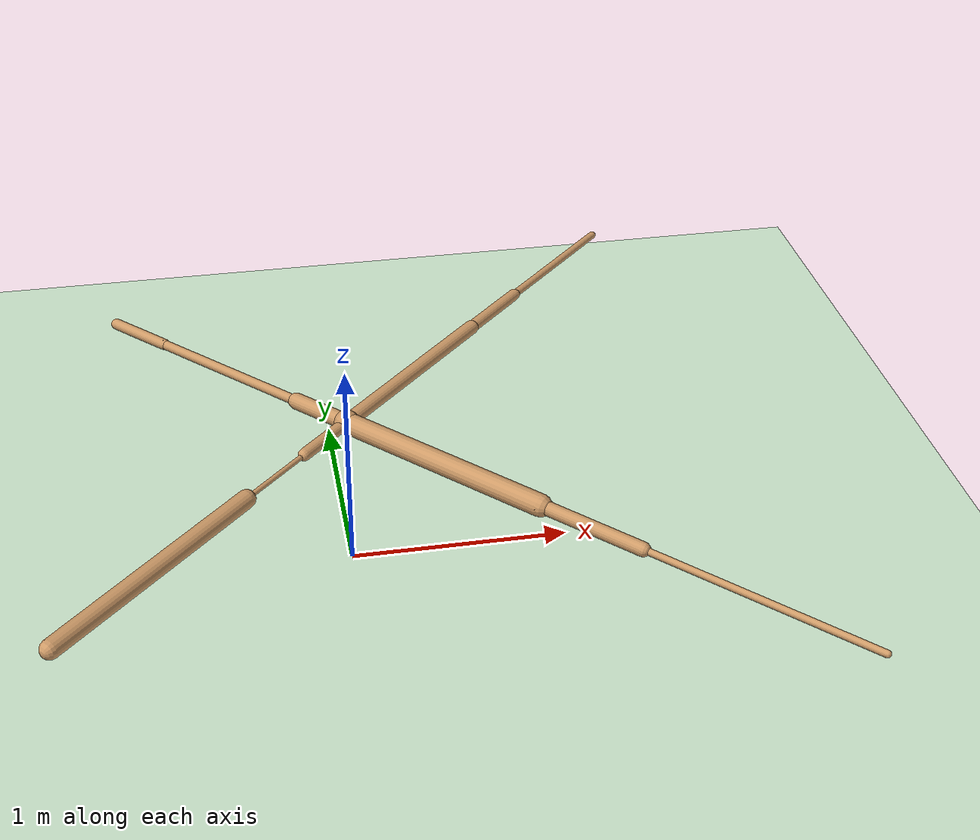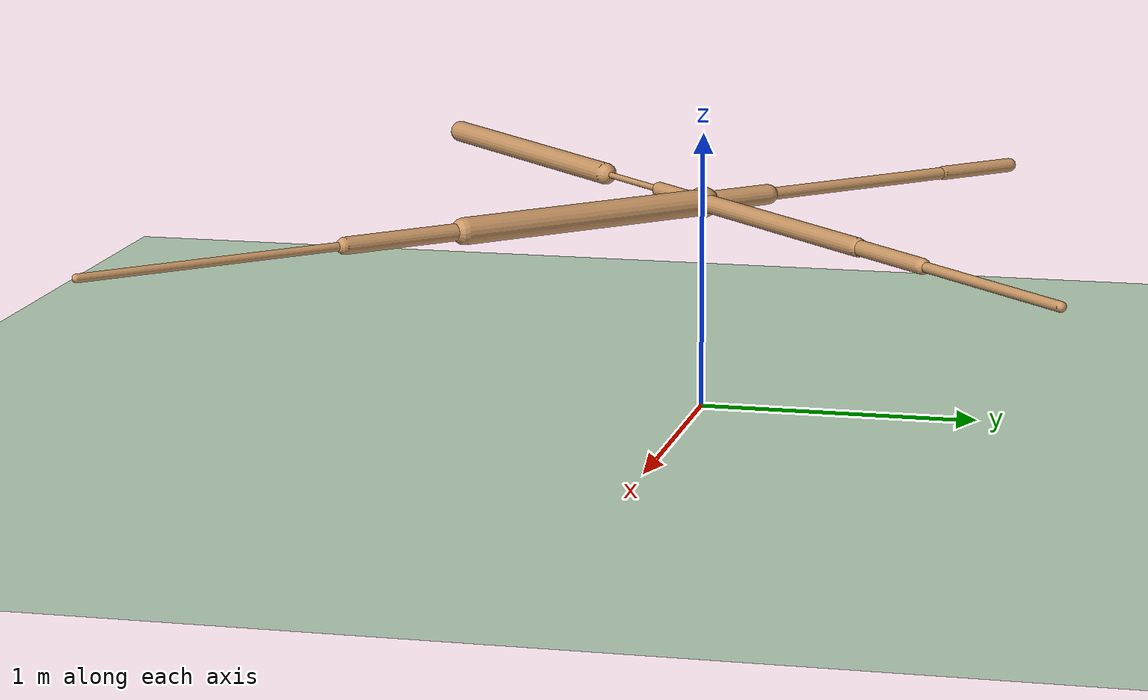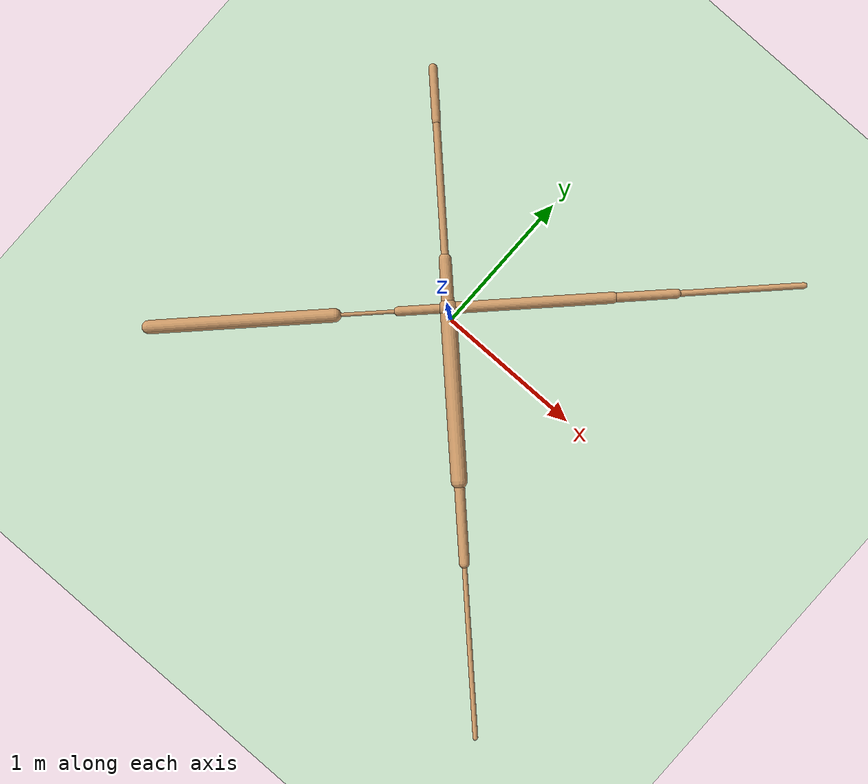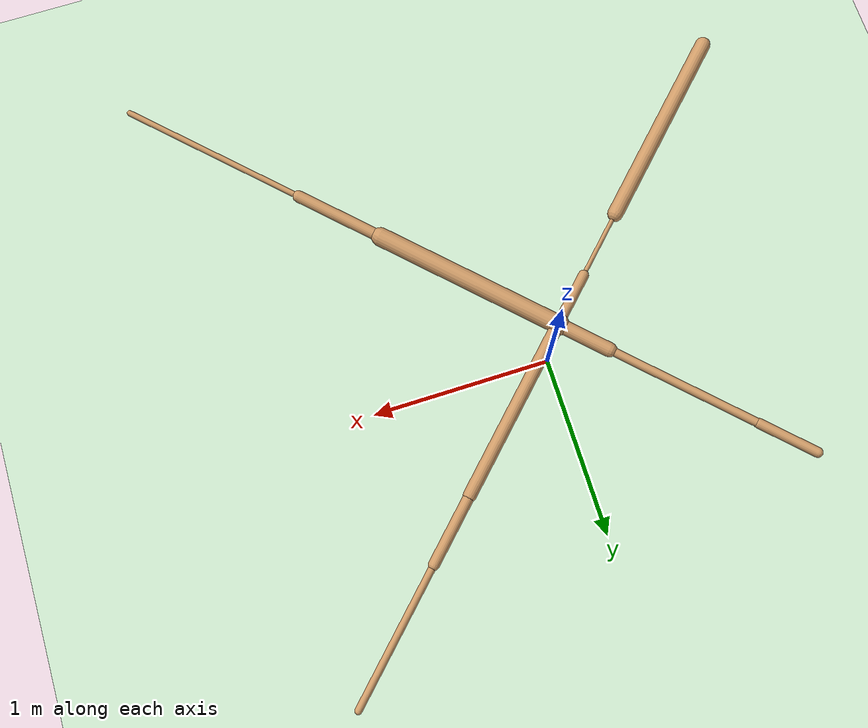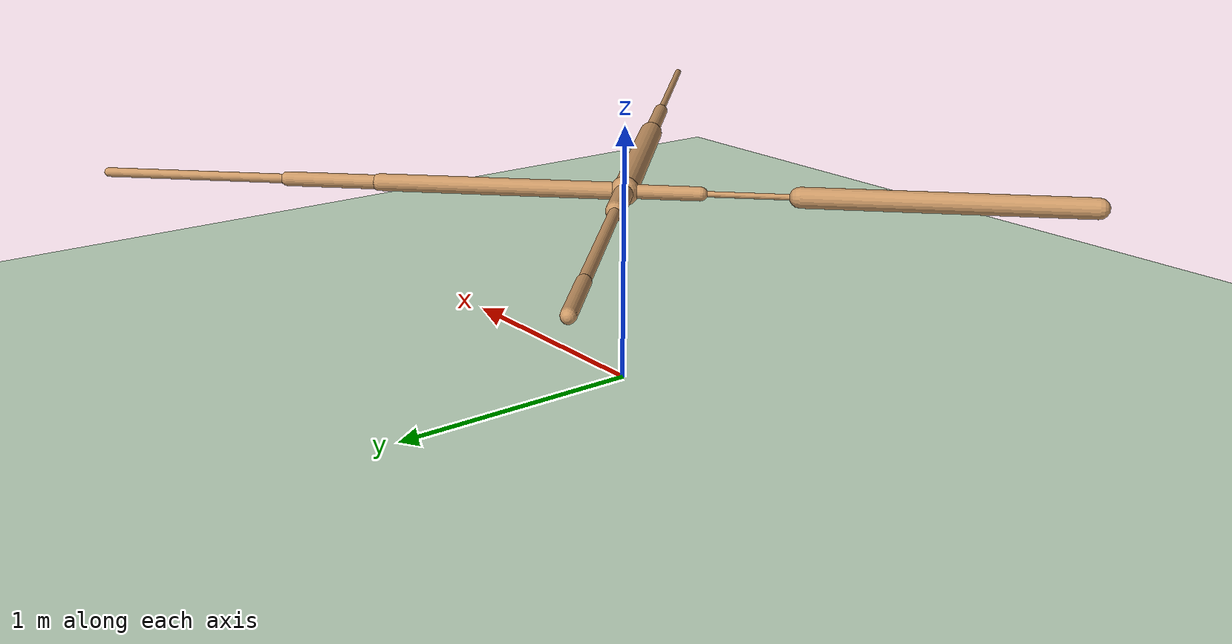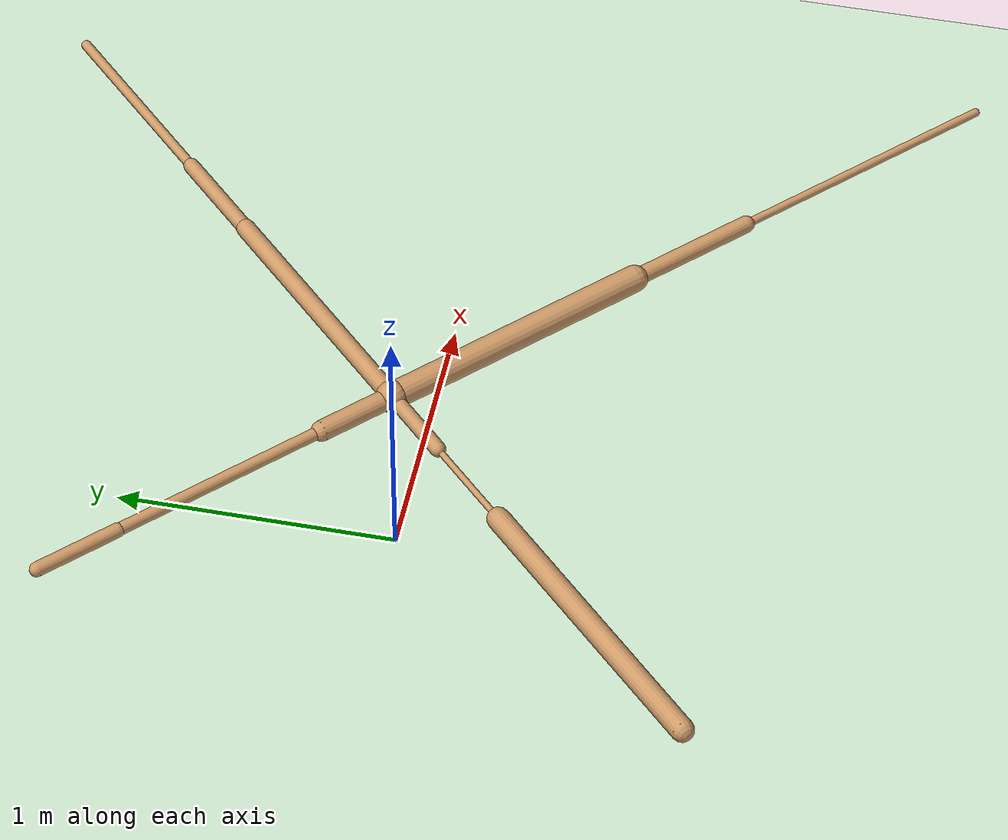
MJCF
<mujoco model="ant">
  <compiler angle="degree" coordinate="local" inertiafromgeom="true" />
  <option integrator="RK4" timestep="0.01" />
  <custom>
    <numeric data="0.0 0.0 0.55 1.0 0.0 0.0 0.0 0.0 1.0 0.0 -1.0 0.0 -1.0 0.0 1.0" name="init_qpos" />
  </custom>
  <default>
    <joint armature="1" damping="1" limited="true" />
    <geom conaffinity="0" condim="3" density="5.0" friction="1 0.5 0.5" margin="0.01" rgba="0.8 0.6 0.4 1" />
  </default>
  <asset>
    <texture builtin="gradient" height="100" rgb1="1 1 1" rgb2="0 0 0" type="skybox" width="100" />
    <texture builtin="flat" height="1278" mark="cross" markrgb="1 1 1" name="texgeom" random="0.01" rgb1="0.8 0.6 0.4" rgb2="0.8 0.6 0.4" type="cube" width="127" />
    <texture builtin="checker" height="100" name="texplane" rgb1="0 0 0" rgb2="0.8 0.8 0.8" type="2d" width="100" />
    <material name="MatPlane" reflectance="0.5" shininess="1" specular="1" texrepeat="60 60" texture="texplane" />
    <material name="geom" texture="texgeom" texuniform="true" />
  </asset>
  <worldbody>
    <light cutoff="100" diffuse="1 1 1" dir="-0 0 -1.3" directional="true" exponent="1" pos="0 0 1.3" specular=".1 .1 .1" />
    <geom conaffinity="1" condim="3" material="MatPlane" name="floor" pos="0 0 0" rgba="0.8 0.9 0.8 1" size="40 40 40" type="plane" />
    <body name="torso" pos="0 0 0.75">
      <camera name="track" mode="trackcom" pos="0 -11 5" xyaxes="1 0 0 0 0.5 1" />
      <geom name="torso_geom" pos="0 0 0" size="0.05603870749473572" type="sphere" />
      <joint armature="0" damping="0" limited="false" margin="0.01" name="root" pos="0 0 0" type="free" />
      <body name="front_left_leg" pos="0 0 0">
        <geom fromto="0 0 0 0.6686564087867737 0.6686564087867737 0" name="aux_1_geom" size="0.03316120058298111" type="capsule" />
        <body name="aux_1" pos="0.6686564087867737 0.6686564087867737 0">
          <joint axis="0 0 1" name="hip_1" pos="0.0 0.0 0.0" range="-30 30" type="hinge" />
          <geom fromto="0 0 0 0.2579320967197418 0.2579320967197418 0" name="left_leg_geom" size="0.027724383398890495" type="capsule" />
          <body name="left_leg_geom_aux" pos="0.2579320967197418 0.2579320967197418 0">
            <joint axis="-1 1 0" name="ankle_1" pos="0.0 0.0 0.0" range="30 70" type="hinge" />
            <geom fromto="0 0 0 0.516933262348175 0.516933262348175 0" name="left_ankle_geom" size="0.01806151121854782" type="capsule" />
          </body>
        </body>
      </body>
      <body name="front_right_leg" pos="0 0 0">
        <geom fromto="0 0 0 -0.19810429215431213 0.19810429215431213 0" name="aux_2_geom" size="0.03660976514220238" type="capsule" />
        <body name="aux_2" pos="-0.19810429215431213 0.19810429215431213 0">
          <joint axis="0 0 1" name="hip_2" pos="0.0 0.0 0.0" range="-30 30" type="hinge" />
          <geom fromto="0 0 0 -0.5611169338226318 0.5611169338226318 0" name="right_leg_geom" size="0.02183634042739868" type="capsule" />
          <body name="right_leg_geom_aux" pos="-0.5611169338226318 0.5611169338226318 0">
            <joint axis="1 1 0" name="ankle_2" pos="0.0 0.0 0.0" range="-70 -30" type="hinge" />
            <geom fromto="0 0 0 -0.21660208702087402 0.21660208702087402 0" name="right_ankle_geom" size="0.025349149480462074" type="capsule" />
          </body>
        </body>
      </body>
      <body name="back_leg" pos="0 0 0">
        <geom fromto="0 0 0 -0.20163707435131073 -0.20163707435131073 0" name="aux_3_geom" size="0.027066074311733246" type="capsule" />
        <body name="aux_3" pos="-0.20163707435131073 -0.20163707435131073 0">
          <joint axis="0 0 1" name="hip_3" pos="0.0 0.0 0.0" range="-30 30" type="hinge" />
          <geom fromto="0 0 0 -0.25906944274902344 -0.25906944274902344 0" name="back_leg_geom" size="0.01110976655036211" type="capsule" />
          <body name="back_leg_geom_aux" pos="-0.25906944274902344 -0.25906944274902344 0">
            <joint axis="-1 1 0" name="ankle_3" pos="0.0 0.0 0.0" range="-70 -30" type="hinge" />
            <geom fromto="0 0 0 -0.7521599531173706 -0.7521599531173706 0" name="third_ankle_geom" size="0.03983617573976517" type="capsule" />
          </body>
        </body>
      </body>
      <body name="right_back_leg" pos="0 0 0">
        <geom fromto="0 0 0 0.7004987001419067 -0.7004987001419067 0" name="aux_4_geom" size="0.04783311113715172" type="capsule" />
        <body name="aux_4" pos="0.7004987001419067 -0.7004987001419067 0">
          <joint axis="0 0 1" name="hip_4" pos="0.0 0.0 0.0" range="-30 30" type="hinge" />
          <geom fromto="0 0 0 0.33292829990386963 -0.33292829990386963 0" name="rightback_leg_geom" size="0.030317669734358788" type="capsule" />
          <body name="rightback_leg_geom_aux" pos="0.33292829990386963 -0.33292829990386963 0">
            <joint axis="1 1 0" name="ankle_4" pos="0.0 0.0 0.0" range="30 70" type="hinge" />
            <geom fromto="0 0 0 0.7058693170547485 -0.7058693170547485 0" name="fourth_ankle_geom" size="0.014938956126570702" type="capsule" />
          </body>
        </body>
      </body>
    </body>
  </worldbody>
  <actuator>
    <motor ctrllimited="true" ctrlrange="-1.0 1.0" joint="hip_4" gear="150" />
    <motor ctrllimited="true" ctrlrange="-1.0 1.0" joint="ankle_4" gear="150" />
    <motor ctrllimited="true" ctrlrange="-1.0 1.0" joint="hip_1" gear="150" />
    <motor ctrllimited="true" ctrlrange="-1.0 1.0" joint="ankle_1" gear="150" />
    <motor ctrllimited="true" ctrlrange="-1.0 1.0" joint="hip_2" gear="150" />
    <motor ctrllimited="true" ctrlrange="-1.0 1.0" joint="ankle_2" gear="150" />
    <motor ctrllimited="true" ctrlrange="-1.0 1.0" joint="hip_3" gear="150" />
    <motor ctrllimited="true" ctrlrange="-1.0 1.0" joint="ankle_3" gear="150" />
  </actuator>
</mujoco>
